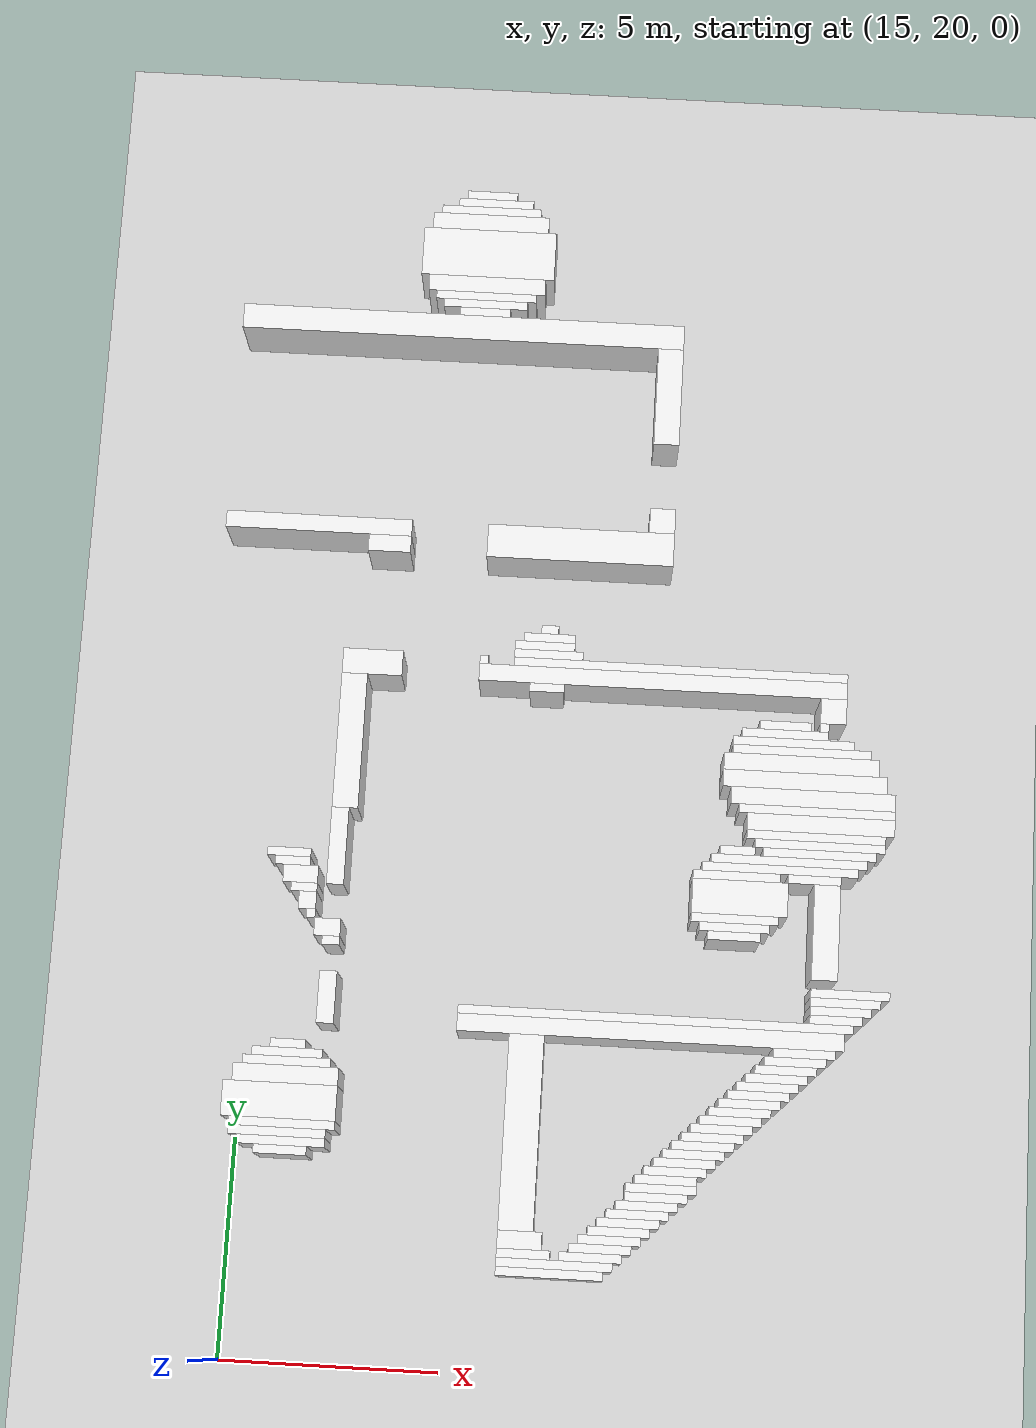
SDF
<sdf version="1.7">
 <world name="default">
  <model name="ground_plane">
   <static>1</static>
   <link name="link">
    <collision name="collision">
     <geometry><plane><normal>0 0 1</normal><size>120 120</size></plane></geometry>
    </collision>
    <visual name="visual">
     <geometry><plane><normal>0 0 1</normal><size>120 120</size></plane></geometry>
     <material>
      <script><uri>file://media/materials/scripts/gazebo.material</uri><name>Gazebo/Grey</name></script>
     </material>
    </visual>
   </link>
  </model>
  <model name="random_complex_03_model">
   <static>1</static>
   <link name="obs_11">
    <pose>19.6000 47.9000 0.8000 0 0 0</pose>
    <collision name="obs_11_col"><geometry><box><size>1.2000 0.2000 1.6000</size></box></geometry></collision>
    <visual name="obs_11_vis">
     <geometry><box><size>1.2000 0.2000 1.6000</size></box></geometry>
     <material>
      <script><uri>file://media/materials/scripts/gazebo.material</uri><name>Gazebo/White</name></script>
     </material>
    </visual>
   </link>
   <link name="obs_16">
    <pose>19.7000 47.7000 0.8000 0 0 0</pose>
    <collision name="obs_16_col"><geometry><box><size>1.8000 0.2000 1.6000</size></box></geometry></collision>
    <visual name="obs_16_vis">
     <geometry><box><size>1.8000 0.2000 1.6000</size></box></geometry>
     <material>
      <script><uri>file://media/materials/scripts/gazebo.material</uri><name>Gazebo/White</name></script>
     </material>
    </visual>
   </link>
   <link name="obs_19">
    <pose>19.6000 47.5000 0.8000 0 0 0</pose>
    <collision name="obs_19_col"><geometry><box><size>2.4000 0.2000 1.6000</size></box></geometry></collision>
    <visual name="obs_19_vis">
     <geometry><box><size>2.4000 0.2000 1.6000</size></box></geometry>
     <material>
      <script><uri>file://media/materials/scripts/gazebo.material</uri><name>Gazebo/White</name></script>
     </material>
    </visual>
   </link>
   <link name="obs_24">
    <pose>19.6000 47.2000 0.8000 0 0 0</pose>
    <collision name="obs_24_col"><geometry><box><size>2.8000 0.4000 1.6000</size></box></geometry></collision>
    <visual name="obs_24_vis">
     <geometry><box><size>2.8000 0.4000 1.6000</size></box></geometry>
     <material>
      <script><uri>file://media/materials/scripts/gazebo.material</uri><name>Gazebo/White</name></script>
     </material>
    </visual>
   </link>
   <link name="obs_47">
    <pose>19.6000 46.4000 0.8000 0 0 0</pose>
    <collision name="obs_47_col"><geometry><box><size>3.2000 1.2000 1.6000</size></box></geometry></collision>
    <visual name="obs_47_vis">
     <geometry><box><size>3.2000 1.2000 1.6000</size></box></geometry>
     <material>
      <script><uri>file://media/materials/scripts/gazebo.material</uri><name>Gazebo/White</name></script>
     </material>
    </visual>
   </link>
   <link name="obs_56">
    <pose>19.6000 45.6000 0.8000 0 0 0</pose>
    <collision name="obs_56_col"><geometry><box><size>2.8000 0.4000 1.6000</size></box></geometry></collision>
    <visual name="obs_56_vis">
     <geometry><box><size>2.8000 0.4000 1.6000</size></box></geometry>
     <material>
      <script><uri>file://media/materials/scripts/gazebo.material</uri><name>Gazebo/White</name></script>
     </material>
    </visual>
   </link>
   <link name="obs_64">
    <pose>19.6000 45.3000 0.8000 0 0 0</pose>
    <collision name="obs_64_col"><geometry><box><size>2.4000 0.2000 1.6000</size></box></geometry></collision>
    <visual name="obs_64_vis">
     <geometry><box><size>2.4000 0.2000 1.6000</size></box></geometry>
     <material>
      <script><uri>file://media/materials/scripts/gazebo.material</uri><name>Gazebo/White</name></script>
     </material>
    </visual>
   </link>
   <link name="obs_68">
    <pose>19.6000 45.1000 0.8000 0 0 0</pose>
    <collision name="obs_68_col"><geometry><box><size>2.0000 0.2000 1.6000</size></box></geometry></collision>
    <visual name="obs_68_vis">
     <geometry><box><size>2.0000 0.2000 1.6000</size></box></geometry>
     <material>
      <script><uri>file://media/materials/scripts/gazebo.material</uri><name>Gazebo/White</name></script>
     </material>
    </visual>
   </link>
   <link name="obs_72">
    <pose>19.6000 44.9000 0.8000 0 0 0</pose>
    <collision name="obs_72_col"><geometry><box><size>1.2000 0.2000 1.6000</size></box></geometry></collision>
    <visual name="obs_72_vis">
     <geometry><box><size>1.2000 0.2000 1.6000</size></box></geometry>
     <material>
      <script><uri>file://media/materials/scripts/gazebo.material</uri><name>Gazebo/White</name></script>
     </material>
    </visual>
   </link>
   <link name="obs_81">
    <pose>19.1000 44.5000 0.8000 0 0 0</pose>
    <collision name="obs_81_col"><geometry><box><size>10.6000 0.6000 1.6000</size></box></geometry></collision>
    <visual name="obs_81_vis">
     <geometry><box><size>10.6000 0.6000 1.6000</size></box></geometry>
     <material>
      <script><uri>file://media/materials/scripts/gazebo.material</uri><name>Gazebo/White</name></script>
     </material>
    </visual>
   </link>
   <link name="obs_147">
    <pose>24.1000 43.0000 0.8000 0 0 0</pose>
    <collision name="obs_147_col"><geometry><box><size>0.6000 2.4000 1.6000</size></box></geometry></collision>
    <visual name="obs_147_vis">
     <geometry><box><size>0.6000 2.4000 1.6000</size></box></geometry>
     <material>
      <script><uri>file://media/materials/scripts/gazebo.material</uri><name>Gazebo/White</name></script>
     </material>
    </visual>
   </link>
   <link name="obs_194">
    <pose>24.1000 39.9000 0.8000 0 0 0</pose>
    <collision name="obs_194_col"><geometry><box><size>0.6000 0.6000 1.6000</size></box></geometry></collision>
    <visual name="obs_194_vis">
     <geometry><box><size>0.6000 0.6000 1.6000</size></box></geometry>
     <material>
      <script><uri>file://media/materials/scripts/gazebo.material</uri><name>Gazebo/White</name></script>
     </material>
    </visual>
   </link>
   <link name="obs_207">
    <pose>16.0000 39.4000 0.8000 0 0 0</pose>
    <collision name="obs_207_col"><geometry><box><size>4.4000 0.4000 1.6000</size></box></geometry></collision>
    <visual name="obs_207_vis">
     <geometry><box><size>4.4000 0.4000 1.6000</size></box></geometry>
     <material>
      <script><uri>file://media/materials/scripts/gazebo.material</uri><name>Gazebo/White</name></script>
     </material>
    </visual>
   </link>
   <link name="obs_220">
    <pose>22.2000 39.2000 0.8000 0 0 0</pose>
    <collision name="obs_220_col"><geometry><box><size>4.4000 0.8000 1.6000</size></box></geometry></collision>
    <visual name="obs_220_vis">
     <geometry><box><size>4.4000 0.8000 1.6000</size></box></geometry>
     <material>
      <script><uri>file://media/materials/scripts/gazebo.material</uri><name>Gazebo/White</name></script>
     </material>
    </visual>
   </link>
   <link name="obs_221">
    <pose>17.7000 39.0000 0.8000 0 0 0</pose>
    <collision name="obs_221_col"><geometry><box><size>1.0000 0.4000 1.6000</size></box></geometry></collision>
    <visual name="obs_221_vis">
     <geometry><box><size>1.0000 0.4000 1.6000</size></box></geometry>
     <material>
      <script><uri>file://media/materials/scripts/gazebo.material</uri><name>Gazebo/White</name></script>
     </material>
    </visual>
   </link>
   <link name="obs_261">
    <pose>21.6000 37.1000 0.8000 0 0 0</pose>
    <collision name="obs_261_col"><geometry><box><size>0.4000 0.2000 1.6000</size></box></geometry></collision>
    <visual name="obs_261_vis">
     <geometry><box><size>0.4000 0.2000 1.6000</size></box></geometry>
     <material>
      <script><uri>file://media/materials/scripts/gazebo.material</uri><name>Gazebo/White</name></script>
     </material>
    </visual>
   </link>
   <link name="obs_265">
    <pose>21.6000 36.9000 0.8000 0 0 0</pose>
    <collision name="obs_265_col"><geometry><box><size>1.2000 0.2000 1.6000</size></box></geometry></collision>
    <visual name="obs_265_vis">
     <geometry><box><size>1.2000 0.2000 1.6000</size></box></geometry>
     <material>
      <script><uri>file://media/materials/scripts/gazebo.material</uri><name>Gazebo/White</name></script>
     </material>
    </visual>
   </link>
   <link name="obs_270">
    <pose>21.5000 36.7000 0.8000 0 0 0</pose>
    <collision name="obs_270_col"><geometry><box><size>1.4000 0.2000 1.6000</size></box></geometry></collision>
    <visual name="obs_270_vis">
     <geometry><box><size>1.4000 0.2000 1.6000</size></box></geometry>
     <material>
      <script><uri>file://media/materials/scripts/gazebo.material</uri><name>Gazebo/White</name></script>
     </material>
    </visual>
   </link>
   <link name="obs_275">
    <pose>21.6000 36.5000 0.8000 0 0 0</pose>
    <collision name="obs_275_col"><geometry><box><size>1.6000 0.2000 1.6000</size></box></geometry></collision>
    <visual name="obs_275_vis">
     <geometry><box><size>1.6000 0.2000 1.6000</size></box></geometry>
     <material>
      <script><uri>file://media/materials/scripts/gazebo.material</uri><name>Gazebo/White</name></script>
     </material>
    </visual>
   </link>
   <link name="obs_280">
    <pose>20.1000 36.3000 0.8000 0 0 0</pose>
    <collision name="obs_280_col"><geometry><box><size>0.2000 0.2000 1.6000</size></box></geometry></collision>
    <visual name="obs_280_vis">
     <geometry><box><size>0.2000 0.2000 1.6000</size></box></geometry>
     <material>
      <script><uri>file://media/materials/scripts/gazebo.material</uri><name>Gazebo/White</name></script>
     </material>
    </visual>
   </link>
   <link name="obs_281">
    <pose>24.7000 36.3000 0.8000 0 0 0</pose>
    <collision name="obs_281_col"><geometry><box><size>7.8000 0.2000 1.6000</size></box></geometry></collision>
    <visual name="obs_281_vis">
     <geometry><box><size>7.8000 0.2000 1.6000</size></box></geometry>
     <material>
      <script><uri>file://media/materials/scripts/gazebo.material</uri><name>Gazebo/White</name></script>
     </material>
    </visual>
   </link>
   <link name="obs_293">
    <pose>17.5000 36.1000 0.8000 0 0 0</pose>
    <collision name="obs_293_col"><geometry><box><size>1.4000 0.6000 1.6000</size></box></geometry></collision>
    <visual name="obs_293_vis">
     <geometry><box><size>1.4000 0.6000 1.6000</size></box></geometry>
     <material>
      <script><uri>file://media/materials/scripts/gazebo.material</uri><name>Gazebo/White</name></script>
     </material>
    </visual>
   </link>
   <link name="obs_295">
    <pose>24.3000 36.0000 0.8000 0 0 0</pose>
    <collision name="obs_295_col"><geometry><box><size>8.6000 0.4000 1.6000</size></box></geometry></collision>
    <visual name="obs_295_vis">
     <geometry><box><size>8.6000 0.4000 1.6000</size></box></geometry>
     <material>
      <script><uri>file://media/materials/scripts/gazebo.material</uri><name>Gazebo/White</name></script>
     </material>
    </visual>
   </link>
   <link name="obs_306">
    <pose>21.6000 35.7000 0.8000 0 0 0</pose>
    <collision name="obs_306_col"><geometry><box><size>0.8000 0.2000 1.6000</size></box></geometry></collision>
    <visual name="obs_306_vis">
     <geometry><box><size>0.8000 0.2000 1.6000</size></box></geometry>
     <material>
      <script><uri>file://media/materials/scripts/gazebo.material</uri><name>Gazebo/White</name></script>
     </material>
    </visual>
   </link>
   <link name="obs_318">
    <pose>28.3000 35.5000 0.8000 0 0 0</pose>
    <collision name="obs_318_col"><geometry><box><size>0.6000 0.6000 1.6000</size></box></geometry></collision>
    <visual name="obs_318_vis">
     <geometry><box><size>0.6000 0.6000 1.6000</size></box></geometry>
     <material>
      <script><uri>file://media/materials/scripts/gazebo.material</uri><name>Gazebo/White</name></script>
     </material>
    </visual>
   </link>
   <link name="obs_330">
    <pose>27.2000 35.1000 0.8000 0 0 0</pose>
    <collision name="obs_330_col"><geometry><box><size>1.2000 0.2000 1.6000</size></box></geometry></collision>
    <visual name="obs_330_vis">
     <geometry><box><size>1.2000 0.2000 1.6000</size></box></geometry>
     <material>
      <script><uri>file://media/materials/scripts/gazebo.material</uri><name>Gazebo/White</name></script>
     </material>
    </visual>
   </link>
   <link name="obs_331">
    <pose>28.1000 35.1000 0.8000 0 0 0</pose>
    <collision name="obs_331_col"><geometry><box><size>0.2000 0.2000 1.6000</size></box></geometry></collision>
    <visual name="obs_331_vis">
     <geometry><box><size>0.2000 0.2000 1.6000</size></box></geometry>
     <material>
      <script><uri>file://media/materials/scripts/gazebo.material</uri><name>Gazebo/White</name></script>
     </material>
    </visual>
   </link>
   <link name="obs_343">
    <pose>27.2000 34.9000 0.8000 0 0 0</pose>
    <collision name="obs_343_col"><geometry><box><size>2.0000 0.2000 1.6000</size></box></geometry></collision>
    <visual name="obs_343_vis">
     <geometry><box><size>2.0000 0.2000 1.6000</size></box></geometry>
     <material>
      <script><uri>file://media/materials/scripts/gazebo.material</uri><name>Gazebo/White</name></script>
     </material>
    </visual>
   </link>
   <link name="obs_352">
    <pose>27.4000 34.7000 0.8000 0 0 0</pose>
    <collision name="obs_352_col"><geometry><box><size>2.8000 0.2000 1.6000</size></box></geometry></collision>
    <visual name="obs_352_vis">
     <geometry><box><size>2.8000 0.2000 1.6000</size></box></geometry>
     <material>
      <script><uri>file://media/materials/scripts/gazebo.material</uri><name>Gazebo/White</name></script>
     </material>
    </visual>
   </link>
   <link name="obs_362">
    <pose>27.6000 34.5000 0.8000 0 0 0</pose>
    <collision name="obs_362_col"><geometry><box><size>3.2000 0.2000 1.6000</size></box></geometry></collision>
    <visual name="obs_362_vis">
     <geometry><box><size>3.2000 0.2000 1.6000</size></box></geometry>
     <material>
      <script><uri>file://media/materials/scripts/gazebo.material</uri><name>Gazebo/White</name></script>
     </material>
    </visual>
   </link>
   <link name="obs_373">
    <pose>27.6000 34.2000 0.8000 0 0 0</pose>
    <collision name="obs_373_col"><geometry><box><size>3.6000 0.4000 1.6000</size></box></geometry></collision>
    <visual name="obs_373_vis">
     <geometry><box><size>3.6000 0.4000 1.6000</size></box></geometry>
     <material>
      <script><uri>file://media/materials/scripts/gazebo.material</uri><name>Gazebo/White</name></script>
     </material>
    </visual>
   </link>
   <link name="obs_387">
    <pose>27.7000 33.8000 0.8000 0 0 0</pose>
    <collision name="obs_387_col"><geometry><box><size>3.8000 0.4000 1.6000</size></box></geometry></collision>
    <visual name="obs_387_vis">
     <geometry><box><size>3.8000 0.4000 1.6000</size></box></geometry>
     <material>
      <script><uri>file://media/materials/scripts/gazebo.material</uri><name>Gazebo/White</name></script>
     </material>
    </visual>
   </link>
   <link name="obs_404">
    <pose>27.9000 33.4000 0.8000 0 0 0</pose>
    <collision name="obs_404_col"><geometry><box><size>3.8000 0.4000 1.6000</size></box></geometry></collision>
    <visual name="obs_404_vis">
     <geometry><box><size>3.8000 0.4000 1.6000</size></box></geometry>
     <material>
      <script><uri>file://media/materials/scripts/gazebo.material</uri><name>Gazebo/White</name></script>
     </material>
    </visual>
   </link>
   <link name="obs_418">
    <pose>28.0000 33.1000 0.8000 0 0 0</pose>
    <collision name="obs_418_col"><geometry><box><size>3.6000 0.2000 1.6000</size></box></geometry></collision>
    <visual name="obs_418_vis">
     <geometry><box><size>3.6000 0.2000 1.6000</size></box></geometry>
     <material>
      <script><uri>file://media/materials/scripts/gazebo.material</uri><name>Gazebo/White</name></script>
     </material>
    </visual>
   </link>
   <link name="obs_426">
    <pose>17.1000 34.2000 0.8000 0 0 0</pose>
    <collision name="obs_426_col"><geometry><box><size>0.6000 3.2000 1.6000</size></box></geometry></collision>
    <visual name="obs_426_vis">
     <geometry><box><size>0.6000 3.2000 1.6000</size></box></geometry>
     <material>
      <script><uri>file://media/materials/scripts/gazebo.material</uri><name>Gazebo/White</name></script>
     </material>
    </visual>
   </link>
   <link name="obs_429">
    <pose>28.1000 32.8000 0.8000 0 0 0</pose>
    <collision name="obs_429_col"><geometry><box><size>3.4000 0.4000 1.6000</size></box></geometry></collision>
    <visual name="obs_429_vis">
     <geometry><box><size>3.4000 0.4000 1.6000</size></box></geometry>
     <material>
      <script><uri>file://media/materials/scripts/gazebo.material</uri><name>Gazebo/White</name></script>
     </material>
    </visual>
   </link>
   <link name="obs_443">
    <pose>28.0000 32.5000 0.8000 0 0 0</pose>
    <collision name="obs_443_col"><geometry><box><size>3.2000 0.2000 1.6000</size></box></geometry></collision>
    <visual name="obs_443_vis">
     <geometry><box><size>3.2000 0.2000 1.6000</size></box></geometry>
     <material>
      <script><uri>file://media/materials/scripts/gazebo.material</uri><name>Gazebo/White</name></script>
     </material>
    </visual>
   </link>
   <link name="obs_451">
    <pose>28.1000 32.3000 0.8000 0 0 0</pose>
    <collision name="obs_451_col"><geometry><box><size>3.0000 0.2000 1.6000</size></box></geometry></collision>
    <visual name="obs_451_vis">
     <geometry><box><size>3.0000 0.2000 1.6000</size></box></geometry>
     <material>
      <script><uri>file://media/materials/scripts/gazebo.material</uri><name>Gazebo/White</name></script>
     </material>
    </visual>
   </link>
   <link name="obs_459">
    <pose>26.2000 32.1000 0.8000 0 0 0</pose>
    <collision name="obs_459_col"><geometry><box><size>0.8000 0.2000 1.6000</size></box></geometry></collision>
    <visual name="obs_459_vis">
     <geometry><box><size>0.8000 0.2000 1.6000</size></box></geometry>
     <material>
      <script><uri>file://media/materials/scripts/gazebo.material</uri><name>Gazebo/White</name></script>
     </material>
    </visual>
   </link>
   <link name="obs_460">
    <pose>28.1000 32.1000 0.8000 0 0 0</pose>
    <collision name="obs_460_col"><geometry><box><size>2.6000 0.2000 1.6000</size></box></geometry></collision>
    <visual name="obs_460_vis">
     <geometry><box><size>2.6000 0.2000 1.6000</size></box></geometry>
     <material>
      <script><uri>file://media/materials/scripts/gazebo.material</uri><name>Gazebo/White</name></script>
     </material>
    </visual>
   </link>
   <link name="obs_469">
    <pose>27.4000 31.9000 0.8000 0 0 0</pose>
    <collision name="obs_469_col"><geometry><box><size>3.6000 0.2000 1.6000</size></box></geometry></collision>
    <visual name="obs_469_vis">
     <geometry><box><size>3.6000 0.2000 1.6000</size></box></geometry>
     <material>
      <script><uri>file://media/materials/scripts/gazebo.material</uri><name>Gazebo/White</name></script>
     </material>
    </visual>
   </link>
   <link name="obs_477">
    <pose>27.2000 31.7000 0.8000 0 0 0</pose>
    <collision name="obs_477_col"><geometry><box><size>3.6000 0.2000 1.6000</size></box></geometry></collision>
    <visual name="obs_477_vis">
     <geometry><box><size>3.6000 0.2000 1.6000</size></box></geometry>
     <material>
      <script><uri>file://media/materials/scripts/gazebo.material</uri><name>Gazebo/White</name></script>
     </material>
    </visual>
   </link>
   <link name="obs_483">
    <pose>15.9000 31.5000 0.8000 0 0 0</pose>
    <collision name="obs_483_col"><geometry><box><size>1.0000 0.2000 1.6000</size></box></geometry></collision>
    <visual name="obs_483_vis">
     <geometry><box><size>1.0000 0.2000 1.6000</size></box></geometry>
     <material>
      <script><uri>file://media/materials/scripts/gazebo.material</uri><name>Gazebo/White</name></script>
     </material>
    </visual>
   </link>
   <link name="obs_484">
    <pose>26.2000 31.5000 0.8000 0 0 0</pose>
    <collision name="obs_484_col"><geometry><box><size>2.0000 0.2000 1.6000</size></box></geometry></collision>
    <visual name="obs_484_vis">
     <geometry><box><size>2.0000 0.2000 1.6000</size></box></geometry>
     <material>
      <script><uri>file://media/materials/scripts/gazebo.material</uri><name>Gazebo/White</name></script>
     </material>
    </visual>
   </link>
   <link name="obs_485">
    <pose>28.0000 31.5000 0.8000 0 0 0</pose>
    <collision name="obs_485_col"><geometry><box><size>1.2000 0.2000 1.6000</size></box></geometry></collision>
    <visual name="obs_485_vis">
     <geometry><box><size>1.2000 0.2000 1.6000</size></box></geometry>
     <material>
      <script><uri>file://media/materials/scripts/gazebo.material</uri><name>Gazebo/White</name></script>
     </material>
    </visual>
   </link>
   <link name="obs_492">
    <pose>16.0000 31.3000 0.8000 0 0 0</pose>
    <collision name="obs_492_col"><geometry><box><size>0.8000 0.2000 1.6000</size></box></geometry></collision>
    <visual name="obs_492_vis">
     <geometry><box><size>0.8000 0.2000 1.6000</size></box></geometry>
     <material>
      <script><uri>file://media/materials/scripts/gazebo.material</uri><name>Gazebo/White</name></script>
     </material>
    </visual>
   </link>
   <link name="obs_499">
    <pose>17.0000 31.7000 0.8000 0 0 0</pose>
    <collision name="obs_499_col"><geometry><box><size>0.4000 1.8000 1.6000</size></box></geometry></collision>
    <visual name="obs_499_vis">
     <geometry><box><size>0.4000 1.8000 1.6000</size></box></geometry>
     <material>
      <script><uri>file://media/materials/scripts/gazebo.material</uri><name>Gazebo/White</name></script>
     </material>
    </visual>
   </link>
   <link name="obs_501">
    <pose>16.2000 31.0000 0.8000 0 0 0</pose>
    <collision name="obs_501_col"><geometry><box><size>0.8000 0.4000 1.6000</size></box></geometry></collision>
    <visual name="obs_501_vis">
     <geometry><box><size>0.8000 0.4000 1.6000</size></box></geometry>
     <material>
      <script><uri>file://media/materials/scripts/gazebo.material</uri><name>Gazebo/White</name></script>
     </material>
    </visual>
   </link>
   <link name="obs_506">
    <pose>26.3000 31.0000 0.8000 0 0 0</pose>
    <collision name="obs_506_col"><geometry><box><size>2.2000 0.8000 1.6000</size></box></geometry></collision>
    <visual name="obs_506_vis">
     <geometry><box><size>2.2000 0.8000 1.6000</size></box></geometry>
     <material>
      <script><uri>file://media/materials/scripts/gazebo.material</uri><name>Gazebo/White</name></script>
     </material>
    </visual>
   </link>
   <link name="obs_513">
    <pose>16.3000 30.7000 0.8000 0 0 0</pose>
    <collision name="obs_513_col"><geometry><box><size>0.6000 0.2000 1.6000</size></box></geometry></collision>
    <visual name="obs_513_vis">
     <geometry><box><size>0.6000 0.2000 1.6000</size></box></geometry>
     <material>
      <script><uri>file://media/materials/scripts/gazebo.material</uri><name>Gazebo/White</name></script>
     </material>
    </visual>
   </link>
   <link name="obs_520">
    <pose>26.2000 30.5000 0.8000 0 0 0</pose>
    <collision name="obs_520_col"><geometry><box><size>2.0000 0.2000 1.6000</size></box></geometry></collision>
    <visual name="obs_520_vis">
     <geometry><box><size>2.0000 0.2000 1.6000</size></box></geometry>
     <material>
      <script><uri>file://media/materials/scripts/gazebo.material</uri><name>Gazebo/White</name></script>
     </material>
    </visual>
   </link>
   <link name="obs_522">
    <pose>16.4000 30.4000 0.8000 0 0 0</pose>
    <collision name="obs_522_col"><geometry><box><size>0.4000 0.4000 1.6000</size></box></geometry></collision>
    <visual name="obs_522_vis">
     <geometry><box><size>0.4000 0.4000 1.6000</size></box></geometry>
     <material>
      <script><uri>file://media/materials/scripts/gazebo.material</uri><name>Gazebo/White</name></script>
     </material>
    </visual>
   </link>
   <link name="obs_527">
    <pose>26.2000 30.3000 0.8000 0 0 0</pose>
    <collision name="obs_527_col"><geometry><box><size>1.6000 0.2000 1.6000</size></box></geometry></collision>
    <visual name="obs_527_vis">
     <geometry><box><size>1.6000 0.2000 1.6000</size></box></geometry>
     <material>
      <script><uri>file://media/materials/scripts/gazebo.material</uri><name>Gazebo/White</name></script>
     </material>
    </visual>
   </link>
   <link name="obs_536">
    <pose>16.5000 30.1000 0.8000 0 0 0</pose>
    <collision name="obs_536_col"><geometry><box><size>0.2000 0.2000 1.6000</size></box></geometry></collision>
    <visual name="obs_536_vis">
     <geometry><box><size>0.2000 0.2000 1.6000</size></box></geometry>
     <material>
      <script><uri>file://media/materials/scripts/gazebo.material</uri><name>Gazebo/White</name></script>
     </material>
    </visual>
   </link>
   <link name="obs_537">
    <pose>26.2000 30.1000 0.8000 0 0 0</pose>
    <collision name="obs_537_col"><geometry><box><size>1.2000 0.2000 1.6000</size></box></geometry></collision>
    <visual name="obs_537_vis">
     <geometry><box><size>1.2000 0.2000 1.6000</size></box></geometry>
     <material>
      <script><uri>file://media/materials/scripts/gazebo.material</uri><name>Gazebo/White</name></script>
     </material>
    </visual>
   </link>
   <link name="obs_548">
    <pose>16.9000 29.8000 0.8000 0 0 0</pose>
    <collision name="obs_548_col"><geometry><box><size>0.6000 0.4000 1.6000</size></box></geometry></collision>
    <visual name="obs_548_vis">
     <geometry><box><size>0.6000 0.4000 1.6000</size></box></geometry>
     <material>
      <script><uri>file://media/materials/scripts/gazebo.material</uri><name>Gazebo/White</name></script>
     </material>
    </visual>
   </link>
   <link name="obs_563">
    <pose>17.0000 29.5000 0.8000 0 0 0</pose>
    <collision name="obs_563_col"><geometry><box><size>0.4000 0.2000 1.6000</size></box></geometry></collision>
    <visual name="obs_563_vis">
     <geometry><box><size>0.4000 0.2000 1.6000</size></box></geometry>
     <material>
      <script><uri>file://media/materials/scripts/gazebo.material</uri><name>Gazebo/White</name></script>
     </material>
    </visual>
   </link>
   <link name="obs_565">
    <pose>28.3000 30.3000 0.8000 0 0 0</pose>
    <collision name="obs_565_col"><geometry><box><size>0.6000 2.2000 1.6000</size></box></geometry></collision>
    <visual name="obs_565_vis">
     <geometry><box><size>0.6000 2.2000 1.6000</size></box></geometry>
     <material>
      <script><uri>file://media/materials/scripts/gazebo.material</uri><name>Gazebo/White</name></script>
     </material>
    </visual>
   </link>
   <link name="obs_586">
    <pose>28.9000 28.9000 0.8000 0 0 0</pose>
    <collision name="obs_586_col"><geometry><box><size>1.8000 0.2000 1.6000</size></box></geometry></collision>
    <visual name="obs_586_vis">
     <geometry><box><size>1.8000 0.2000 1.6000</size></box></geometry>
     <material>
      <script><uri>file://media/materials/scripts/gazebo.material</uri><name>Gazebo/White</name></script>
     </material>
    </visual>
   </link>
   <link name="obs_594">
    <pose>28.8000 28.7000 0.8000 0 0 0</pose>
    <collision name="obs_594_col"><geometry><box><size>1.6000 0.2000 1.6000</size></box></geometry></collision>
    <visual name="obs_594_vis">
     <geometry><box><size>1.6000 0.2000 1.6000</size></box></geometry>
     <material>
      <script><uri>file://media/materials/scripts/gazebo.material</uri><name>Gazebo/White</name></script>
     </material>
    </visual>
   </link>
   <link name="obs_599">
    <pose>28.7000 28.5000 0.8000 0 0 0</pose>
    <collision name="obs_599_col"><geometry><box><size>1.4000 0.2000 1.6000</size></box></geometry></collision>
    <visual name="obs_599_vis">
     <geometry><box><size>1.4000 0.2000 1.6000</size></box></geometry>
     <material>
      <script><uri>file://media/materials/scripts/gazebo.material</uri><name>Gazebo/White</name></script>
     </material>
    </visual>
   </link>
   <link name="obs_604">
    <pose>28.6000 28.3000 0.8000 0 0 0</pose>
    <collision name="obs_604_col"><geometry><box><size>1.2000 0.2000 1.6000</size></box></geometry></collision>
    <visual name="obs_604_vis">
     <geometry><box><size>1.2000 0.2000 1.6000</size></box></geometry>
     <material>
      <script><uri>file://media/materials/scripts/gazebo.material</uri><name>Gazebo/White</name></script>
     </material>
    </visual>
   </link>
   <link name="obs_613">
    <pose>24.5000 28.1000 0.8000 0 0 0</pose>
    <collision name="obs_613_col"><geometry><box><size>9.0000 0.2000 1.6000</size></box></geometry></collision>
    <visual name="obs_613_vis">
     <geometry><box><size>9.0000 0.2000 1.6000</size></box></geometry>
     <material>
      <script><uri>file://media/materials/scripts/gazebo.material</uri><name>Gazebo/White</name></script>
     </material>
    </visual>
   </link>
   <link name="obs_620">
    <pose>17.0000 28.2000 0.8000 0 0 0</pose>
    <collision name="obs_620_col"><geometry><box><size>0.4000 1.2000 1.6000</size></box></geometry></collision>
    <visual name="obs_620_vis">
     <geometry><box><size>0.4000 1.2000 1.6000</size></box></geometry>
     <material>
      <script><uri>file://media/materials/scripts/gazebo.material</uri><name>Gazebo/White</name></script>
     </material>
    </visual>
   </link>
   <link name="obs_622">
    <pose>24.4000 27.8000 0.8000 0 0 0</pose>
    <collision name="obs_622_col"><geometry><box><size>8.8000 0.4000 1.6000</size></box></geometry></collision>
    <visual name="obs_622_vis">
     <geometry><box><size>8.8000 0.4000 1.6000</size></box></geometry>
     <material>
      <script><uri>file://media/materials/scripts/gazebo.material</uri><name>Gazebo/White</name></script>
     </material>
    </visual>
   </link>
   <link name="obs_632">
    <pose>27.9000 27.5000 0.8000 0 0 0</pose>
    <collision name="obs_632_col"><geometry><box><size>1.4000 0.2000 1.6000</size></box></geometry></collision>
    <visual name="obs_632_vis">
     <geometry><box><size>1.4000 0.2000 1.6000</size></box></geometry>
     <material>
      <script><uri>file://media/materials/scripts/gazebo.material</uri><name>Gazebo/White</name></script>
     </material>
    </visual>
   </link>
   <link name="obs_640">
    <pose>27.7000 27.3000 0.8000 0 0 0</pose>
    <collision name="obs_640_col"><geometry><box><size>1.4000 0.2000 1.6000</size></box></geometry></collision>
    <visual name="obs_640_vis">
     <geometry><box><size>1.4000 0.2000 1.6000</size></box></geometry>
     <material>
      <script><uri>file://media/materials/scripts/gazebo.material</uri><name>Gazebo/White</name></script>
     </material>
    </visual>
   </link>
   <link name="obs_648">
    <pose>16.2000 27.1000 0.8000 0 0 0</pose>
    <collision name="obs_648_col"><geometry><box><size>0.8000 0.2000 1.6000</size></box></geometry></collision>
    <visual name="obs_648_vis">
     <geometry><box><size>0.8000 0.2000 1.6000</size></box></geometry>
     <material>
      <script><uri>file://media/materials/scripts/gazebo.material</uri><name>Gazebo/White</name></script>
     </material>
    </visual>
   </link>
   <link name="obs_649">
    <pose>27.5000 27.1000 0.8000 0 0 0</pose>
    <collision name="obs_649_col"><geometry><box><size>1.4000 0.2000 1.6000</size></box></geometry></collision>
    <visual name="obs_649_vis">
     <geometry><box><size>1.4000 0.2000 1.6000</size></box></geometry>
     <material>
      <script><uri>file://media/materials/scripts/gazebo.material</uri><name>Gazebo/White</name></script>
     </material>
    </visual>
   </link>
   <link name="obs_658">
    <pose>16.2000 26.9000 0.8000 0 0 0</pose>
    <collision name="obs_658_col"><geometry><box><size>1.6000 0.2000 1.6000</size></box></geometry></collision>
    <visual name="obs_658_vis">
     <geometry><box><size>1.6000 0.2000 1.6000</size></box></geometry>
     <material>
      <script><uri>file://media/materials/scripts/gazebo.material</uri><name>Gazebo/White</name></script>
     </material>
    </visual>
   </link>
   <link name="obs_659">
    <pose>27.3000 26.9000 0.8000 0 0 0</pose>
    <collision name="obs_659_col"><geometry><box><size>1.4000 0.2000 1.6000</size></box></geometry></collision>
    <visual name="obs_659_vis">
     <geometry><box><size>1.4000 0.2000 1.6000</size></box></geometry>
     <material>
      <script><uri>file://media/materials/scripts/gazebo.material</uri><name>Gazebo/White</name></script>
     </material>
    </visual>
   </link>
   <link name="obs_668">
    <pose>16.2000 26.7000 0.8000 0 0 0</pose>
    <collision name="obs_668_col"><geometry><box><size>2.0000 0.2000 1.6000</size></box></geometry></collision>
    <visual name="obs_668_vis">
     <geometry><box><size>2.0000 0.2000 1.6000</size></box></geometry>
     <material>
      <script><uri>file://media/materials/scripts/gazebo.material</uri><name>Gazebo/White</name></script>
     </material>
    </visual>
   </link>
   <link name="obs_669">
    <pose>27.1000 26.7000 0.8000 0 0 0</pose>
    <collision name="obs_669_col"><geometry><box><size>1.4000 0.2000 1.6000</size></box></geometry></collision>
    <visual name="obs_669_vis">
     <geometry><box><size>1.4000 0.2000 1.6000</size></box></geometry>
     <material>
      <script><uri>file://media/materials/scripts/gazebo.material</uri><name>Gazebo/White</name></script>
     </material>
    </visual>
   </link>
   <link name="obs_676">
    <pose>26.9000 26.5000 0.8000 0 0 0</pose>
    <collision name="obs_676_col"><geometry><box><size>1.4000 0.2000 1.6000</size></box></geometry></collision>
    <visual name="obs_676_vis">
     <geometry><box><size>1.4000 0.2000 1.6000</size></box></geometry>
     <material>
      <script><uri>file://media/materials/scripts/gazebo.material</uri><name>Gazebo/White</name></script>
     </material>
    </visual>
   </link>
   <link name="obs_680">
    <pose>16.2000 26.4000 0.8000 0 0 0</pose>
    <collision name="obs_680_col"><geometry><box><size>2.4000 0.4000 1.6000</size></box></geometry></collision>
    <visual name="obs_680_vis">
     <geometry><box><size>2.4000 0.4000 1.6000</size></box></geometry>
     <material>
      <script><uri>file://media/materials/scripts/gazebo.material</uri><name>Gazebo/White</name></script>
     </material>
    </visual>
   </link>
   <link name="obs_685">
    <pose>26.7000 26.3000 0.8000 0 0 0</pose>
    <collision name="obs_685_col"><geometry><box><size>1.4000 0.2000 1.6000</size></box></geometry></collision>
    <visual name="obs_685_vis">
     <geometry><box><size>1.4000 0.2000 1.6000</size></box></geometry>
     <material>
      <script><uri>file://media/materials/scripts/gazebo.material</uri><name>Gazebo/White</name></script>
     </material>
    </visual>
   </link>
   <link name="obs_692">
    <pose>26.5000 26.1000 0.8000 0 0 0</pose>
    <collision name="obs_692_col"><geometry><box><size>1.4000 0.2000 1.6000</size></box></geometry></collision>
    <visual name="obs_692_vis">
     <geometry><box><size>1.4000 0.2000 1.6000</size></box></geometry>
     <material>
      <script><uri>file://media/materials/scripts/gazebo.material</uri><name>Gazebo/White</name></script>
     </material>
    </visual>
   </link>
   <link name="obs_700">
    <pose>26.3000 25.9000 0.8000 0 0 0</pose>
    <collision name="obs_700_col"><geometry><box><size>1.4000 0.2000 1.6000</size></box></geometry></collision>
    <visual name="obs_700_vis">
     <geometry><box><size>1.4000 0.2000 1.6000</size></box></geometry>
     <material>
      <script><uri>file://media/materials/scripts/gazebo.material</uri><name>Gazebo/White</name></script>
     </material>
    </visual>
   </link>
   <link name="obs_706">
    <pose>26.1000 25.7000 0.8000 0 0 0</pose>
    <collision name="obs_706_col"><geometry><box><size>1.4000 0.2000 1.6000</size></box></geometry></collision>
    <visual name="obs_706_vis">
     <geometry><box><size>1.4000 0.2000 1.6000</size></box></geometry>
     <material>
      <script><uri>file://media/materials/scripts/gazebo.material</uri><name>Gazebo/White</name></script>
     </material>
    </visual>
   </link>
   <link name="obs_707">
    <pose>16.1000 25.8000 0.8000 0 0 0</pose>
    <collision name="obs_707_col"><geometry><box><size>2.6000 0.8000 1.6000</size></box></geometry></collision>
    <visual name="obs_707_vis">
     <geometry><box><size>2.6000 0.8000 1.6000</size></box></geometry>
     <material>
      <script><uri>file://media/materials/scripts/gazebo.material</uri><name>Gazebo/White</name></script>
     </material>
    </visual>
   </link>
   <link name="obs_713">
    <pose>25.9000 25.5000 0.8000 0 0 0</pose>
    <collision name="obs_713_col"><geometry><box><size>1.4000 0.2000 1.6000</size></box></geometry></collision>
    <visual name="obs_713_vis">
     <geometry><box><size>1.4000 0.2000 1.6000</size></box></geometry>
     <material>
      <script><uri>file://media/materials/scripts/gazebo.material</uri><name>Gazebo/White</name></script>
     </material>
    </visual>
   </link>
   <link name="obs_720">
    <pose>16.2000 25.3000 0.8000 0 0 0</pose>
    <collision name="obs_720_col"><geometry><box><size>2.4000 0.2000 1.6000</size></box></geometry></collision>
    <visual name="obs_720_vis">
     <geometry><box><size>2.4000 0.2000 1.6000</size></box></geometry>
     <material>
      <script><uri>file://media/materials/scripts/gazebo.material</uri><name>Gazebo/White</name></script>
     </material>
    </visual>
   </link>
   <link name="obs_721">
    <pose>25.7000 25.3000 0.8000 0 0 0</pose>
    <collision name="obs_721_col"><geometry><box><size>1.4000 0.2000 1.6000</size></box></geometry></collision>
    <visual name="obs_721_vis">
     <geometry><box><size>1.4000 0.2000 1.6000</size></box></geometry>
     <material>
      <script><uri>file://media/materials/scripts/gazebo.material</uri><name>Gazebo/White</name></script>
     </material>
    </visual>
   </link>
   <link name="obs_725">
    <pose>16.1000 25.1000 0.8000 0 0 0</pose>
    <collision name="obs_725_col"><geometry><box><size>2.2000 0.2000 1.6000</size></box></geometry></collision>
    <visual name="obs_725_vis">
     <geometry><box><size>2.2000 0.2000 1.6000</size></box></geometry>
     <material>
      <script><uri>file://media/materials/scripts/gazebo.material</uri><name>Gazebo/White</name></script>
     </material>
    </visual>
   </link>
   <link name="obs_726">
    <pose>25.5000 25.1000 0.8000 0 0 0</pose>
    <collision name="obs_726_col"><geometry><box><size>1.4000 0.2000 1.6000</size></box></geometry></collision>
    <visual name="obs_726_vis">
     <geometry><box><size>1.4000 0.2000 1.6000</size></box></geometry>
     <material>
      <script><uri>file://media/materials/scripts/gazebo.material</uri><name>Gazebo/White</name></script>
     </material>
    </visual>
   </link>
   <link name="obs_735">
    <pose>16.2000 24.9000 0.8000 0 0 0</pose>
    <collision name="obs_735_col"><geometry><box><size>2.0000 0.2000 1.6000</size></box></geometry></collision>
    <visual name="obs_735_vis">
     <geometry><box><size>2.0000 0.2000 1.6000</size></box></geometry>
     <material>
      <script><uri>file://media/materials/scripts/gazebo.material</uri><name>Gazebo/White</name></script>
     </material>
    </visual>
   </link>
   <link name="obs_736">
    <pose>25.3000 24.9000 0.8000 0 0 0</pose>
    <collision name="obs_736_col"><geometry><box><size>1.4000 0.2000 1.6000</size></box></geometry></collision>
    <visual name="obs_736_vis">
     <geometry><box><size>1.4000 0.2000 1.6000</size></box></geometry>
     <material>
      <script><uri>file://media/materials/scripts/gazebo.material</uri><name>Gazebo/White</name></script>
     </material>
    </visual>
   </link>
   <link name="obs_743">
    <pose>16.2000 24.7000 0.8000 0 0 0</pose>
    <collision name="obs_743_col"><geometry><box><size>1.2000 0.2000 1.6000</size></box></geometry></collision>
    <visual name="obs_743_vis">
     <geometry><box><size>1.2000 0.2000 1.6000</size></box></geometry>
     <material>
      <script><uri>file://media/materials/scripts/gazebo.material</uri><name>Gazebo/White</name></script>
     </material>
    </visual>
   </link>
   <link name="obs_744">
    <pose>25.1000 24.7000 0.8000 0 0 0</pose>
    <collision name="obs_744_col"><geometry><box><size>1.4000 0.2000 1.6000</size></box></geometry></collision>
    <visual name="obs_744_vis">
     <geometry><box><size>1.4000 0.2000 1.6000</size></box></geometry>
     <material>
      <script><uri>file://media/materials/scripts/gazebo.material</uri><name>Gazebo/White</name></script>
     </material>
    </visual>
   </link>
   <link name="obs_751">
    <pose>24.9000 24.5000 0.8000 0 0 0</pose>
    <collision name="obs_751_col"><geometry><box><size>1.4000 0.2000 1.6000</size></box></geometry></collision>
    <visual name="obs_751_vis">
     <geometry><box><size>1.4000 0.2000 1.6000</size></box></geometry>
     <material>
      <script><uri>file://media/materials/scripts/gazebo.material</uri><name>Gazebo/White</name></script>
     </material>
    </visual>
   </link>
   <link name="obs_758">
    <pose>24.8000 24.3000 0.8000 0 0 0</pose>
    <collision name="obs_758_col"><geometry><box><size>1.6000 0.2000 1.6000</size></box></geometry></collision>
    <visual name="obs_758_vis">
     <geometry><box><size>1.6000 0.2000 1.6000</size></box></geometry>
     <material>
      <script><uri>file://media/materials/scripts/gazebo.material</uri><name>Gazebo/White</name></script>
     </material>
    </visual>
   </link>
   <link name="obs_767">
    <pose>24.7000 24.1000 0.8000 0 0 0</pose>
    <collision name="obs_767_col"><geometry><box><size>1.4000 0.2000 1.6000</size></box></geometry></collision>
    <visual name="obs_767_vis">
     <geometry><box><size>1.4000 0.2000 1.6000</size></box></geometry>
     <material>
      <script><uri>file://media/materials/scripts/gazebo.material</uri><name>Gazebo/White</name></script>
     </material>
    </visual>
   </link>
   <link name="obs_772">
    <pose>24.5000 23.9000 0.8000 0 0 0</pose>
    <collision name="obs_772_col"><geometry><box><size>1.4000 0.2000 1.6000</size></box></geometry></collision>
    <visual name="obs_772_vis">
     <geometry><box><size>1.4000 0.2000 1.6000</size></box></geometry>
     <material>
      <script><uri>file://media/materials/scripts/gazebo.material</uri><name>Gazebo/White</name></script>
     </material>
    </visual>
   </link>
   <link name="obs_780">
    <pose>24.3000 23.7000 0.8000 0 0 0</pose>
    <collision name="obs_780_col"><geometry><box><size>1.4000 0.2000 1.6000</size></box></geometry></collision>
    <visual name="obs_780_vis">
     <geometry><box><size>1.4000 0.2000 1.6000</size></box></geometry>
     <material>
      <script><uri>file://media/materials/scripts/gazebo.material</uri><name>Gazebo/White</name></script>
     </material>
    </visual>
   </link>
   <link name="obs_785">
    <pose>24.1000 23.5000 0.8000 0 0 0</pose>
    <collision name="obs_785_col"><geometry><box><size>1.4000 0.2000 1.6000</size></box></geometry></collision>
    <visual name="obs_785_vis">
     <geometry><box><size>1.4000 0.2000 1.6000</size></box></geometry>
     <material>
      <script><uri>file://media/materials/scripts/gazebo.material</uri><name>Gazebo/White</name></script>
     </material>
    </visual>
   </link>
   <link name="obs_788">
    <pose>21.6000 25.4000 0.8000 0 0 0</pose>
    <collision name="obs_788_col"><geometry><box><size>0.8000 4.4000 1.6000</size></box></geometry></collision>
    <visual name="obs_788_vis">
     <geometry><box><size>0.8000 4.4000 1.6000</size></box></geometry>
     <material>
      <script><uri>file://media/materials/scripts/gazebo.material</uri><name>Gazebo/White</name></script>
     </material>
    </visual>
   </link>
   <link name="obs_793">
    <pose>23.9000 23.3000 0.8000 0 0 0</pose>
    <collision name="obs_793_col"><geometry><box><size>1.4000 0.2000 1.6000</size></box></geometry></collision>
    <visual name="obs_793_vis">
     <geometry><box><size>1.4000 0.2000 1.6000</size></box></geometry>
     <material>
      <script><uri>file://media/materials/scripts/gazebo.material</uri><name>Gazebo/White</name></script>
     </material>
    </visual>
   </link>
   <link name="obs_802">
    <pose>23.7000 23.1000 0.8000 0 0 0</pose>
    <collision name="obs_802_col"><geometry><box><size>1.4000 0.2000 1.6000</size></box></geometry></collision>
    <visual name="obs_802_vis">
     <geometry><box><size>1.4000 0.2000 1.6000</size></box></geometry>
     <material>
      <script><uri>file://media/materials/scripts/gazebo.material</uri><name>Gazebo/White</name></script>
     </material>
    </visual>
   </link>
   <link name="obs_807">
    <pose>21.7000 23.0000 0.8000 0 0 0</pose>
    <collision name="obs_807_col"><geometry><box><size>1.0000 0.4000 1.6000</size></box></geometry></collision>
    <visual name="obs_807_vis">
     <geometry><box><size>1.0000 0.4000 1.6000</size></box></geometry>
     <material>
      <script><uri>file://media/materials/scripts/gazebo.material</uri><name>Gazebo/White</name></script>
     </material>
    </visual>
   </link>
   <link name="obs_811">
    <pose>23.5000 22.9000 0.8000 0 0 0</pose>
    <collision name="obs_811_col"><geometry><box><size>1.4000 0.2000 1.6000</size></box></geometry></collision>
    <visual name="obs_811_vis">
     <geometry><box><size>1.4000 0.2000 1.6000</size></box></geometry>
     <material>
      <script><uri>file://media/materials/scripts/gazebo.material</uri><name>Gazebo/White</name></script>
     </material>
    </visual>
   </link>
   <link name="obs_822">
    <pose>21.8000 22.7000 0.8000 0 0 0</pose>
    <collision name="obs_822_col"><geometry><box><size>1.2000 0.2000 1.6000</size></box></geometry></collision>
    <visual name="obs_822_vis">
     <geometry><box><size>1.2000 0.2000 1.6000</size></box></geometry>
     <material>
      <script><uri>file://media/materials/scripts/gazebo.material</uri><name>Gazebo/White</name></script>
     </material>
    </visual>
   </link>
   <link name="obs_823">
    <pose>23.3000 22.7000 0.8000 0 0 0</pose>
    <collision name="obs_823_col"><geometry><box><size>1.4000 0.2000 1.6000</size></box></geometry></collision>
    <visual name="obs_823_vis">
     <geometry><box><size>1.4000 0.2000 1.6000</size></box></geometry>
     <material>
      <script><uri>file://media/materials/scripts/gazebo.material</uri><name>Gazebo/White</name></script>
     </material>
    </visual>
   </link>
   <link name="obs_831">
    <pose>22.5000 22.5000 0.8000 0 0 0</pose>
    <collision name="obs_831_col"><geometry><box><size>2.6000 0.2000 1.6000</size></box></geometry></collision>
    <visual name="obs_831_vis">
     <geometry><box><size>2.6000 0.2000 1.6000</size></box></geometry>
     <material>
      <script><uri>file://media/materials/scripts/gazebo.material</uri><name>Gazebo/White</name></script>
     </material>
    </visual>
   </link>
   <link name="obs_841">
    <pose>22.4000 22.3000 0.8000 0 0 0</pose>
    <collision name="obs_841_col"><geometry><box><size>2.4000 0.2000 1.6000</size></box></geometry></collision>
    <visual name="obs_841_vis">
     <geometry><box><size>2.4000 0.2000 1.6000</size></box></geometry>
     <material>
      <script><uri>file://media/materials/scripts/gazebo.material</uri><name>Gazebo/White</name></script>
     </material>
    </visual>
   </link>
  </model>
 </world>
</sdf>
